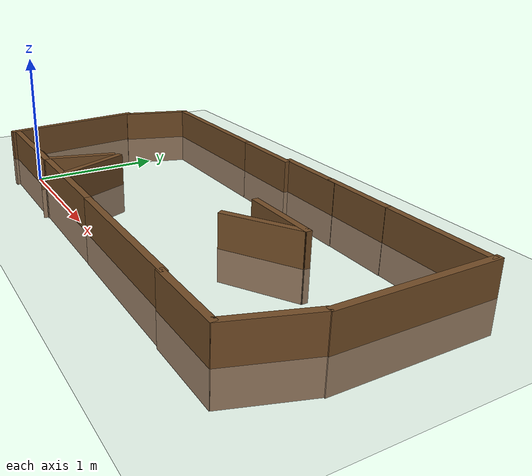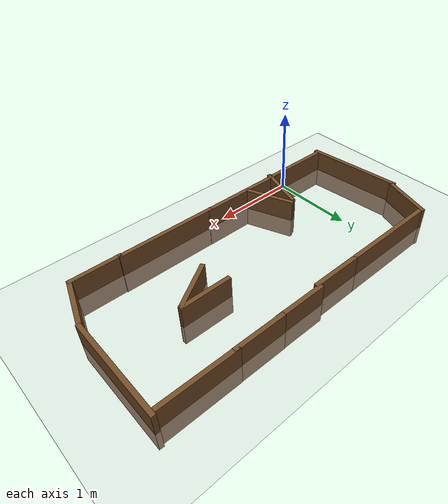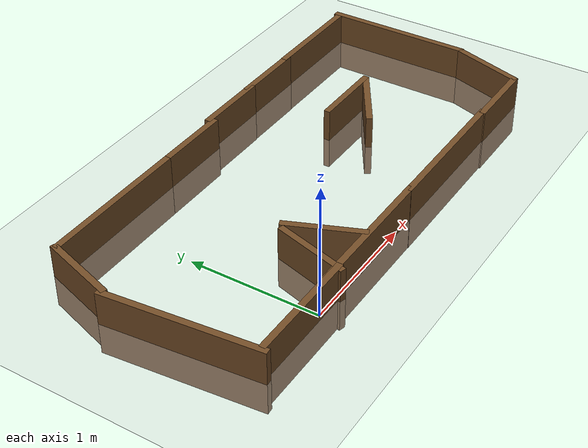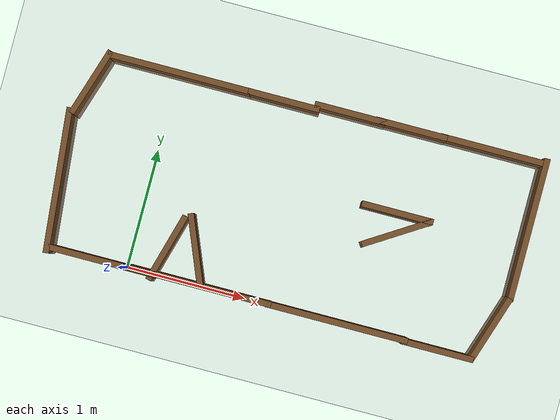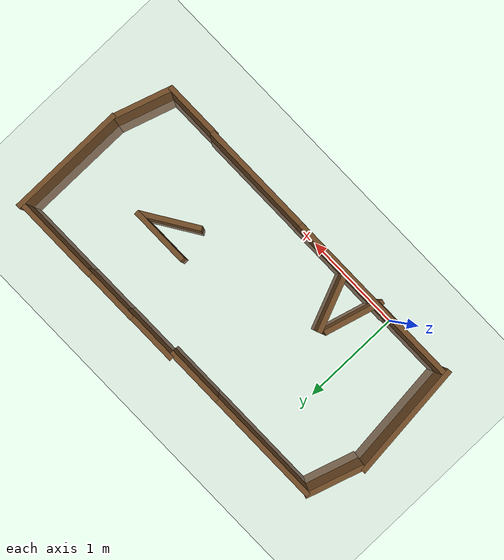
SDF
<sdf version="1.7">
 <world name="default">
  <light name="sun" type="directional">
   <pose>0 0 10 0 -0 0</pose>
   <diffuse>0.8 0.8 0.8 1</diffuse>
   <specular>0.2 0.2 0.2 1</specular>
   <attenuation>
    <range>1000</range>
    <constant>0.9</constant>
    <linear>0.01</linear>
    <quadratic>0.001</quadratic>
   </attenuation>
   <direction>-0.5 0.1 -0.9</direction>
   <spot><inner_angle>0</inner_angle><outer_angle>0</outer_angle><falloff>0</falloff></spot>
  </light>
  <model name="ground_plane">
   <static>1</static>
   <link name="link">
    <collision name="collision">
     <geometry><plane><normal>0 0 1</normal><size>100 100</size></plane></geometry>
     <surface>
      <contact><collide_bitmask>65535</collide_bitmask></contact>
      <friction><ode><mu>100</mu><mu2>50</mu2></ode></friction>
     </surface>
    </collision>
    <visual name="visual">
     <cast_shadows>0</cast_shadows>
     <geometry><plane><normal>0 0 1</normal><size>100 100</size></plane></geometry>
     <material>
      <script><uri>file://media/materials/scripts/gazebo.material</uri><name>Gazebo/Grey</name></script>
     </material>
    </visual>
   </link>
  </model>
  <gravity>0 0 -9.8</gravity>
  <magnetic_field>6e-06 2.3e-05 -4.2e-05</magnetic_field>
  <atmosphere type="adiabatic"/>
  <physics type="ode">
   <max_step_size>0.001</max_step_size>
   <real_time_factor>1</real_time_factor>
   <real_time_update_rate>1000</real_time_update_rate>
  </physics>
  <scene><ambient>0.4 0.4 0.4 1</ambient><background>0.7 0.7 0.7 1</background><shadows>1</shadows></scene>
  <audio><device>default</device></audio>
  <spherical_coordinates>
   <surface_model>EARTH_WGS84</surface_model>
   <latitude_deg>0</latitude_deg>
   <longitude_deg>0</longitude_deg>
   <elevation>0</elevation>
   <heading_deg>0</heading_deg>
  </spherical_coordinates>
  <model name="wall120cm">
   <pose>0.623052 0.009334 0 0 -0 0</pose>
   <static>1</static>
   <link name="link">
    <collision name="collision"><geometry><box><size>1.2 0.05 0.5</size></box></geometry></collision>
    <visual name="visual">
     <geometry><box><size>1.2 0.05 0.5</size></box></geometry>
     <material>
      <ambient>0.45 0.3 0.15 1</ambient>
      <diffuse>0.45 0.3 0.15 1</diffuse>
      <specular>0.05 0.05 0.05 1</specular>
     </material>
    </visual>
   </link>
  </model>
  <model name="wall120cm_0">
   <pose>1.77204 0.00724 0 0 -0 0</pose>
   <link name="Wall_0">
    <pose>1.77204 0.00724 0 0 -0 0</pose>
    <velocity>0 0 0 0 -0 0</velocity>
    <acceleration>0 0 0 0 -0 0</acceleration>
    <wrench>0 0 0 0 -0 0</wrench>
   </link>
   <static>1</static>
   <link name="link">
    <collision name="collision"><geometry><box><size>1.2 0.05 0.5</size></box></geometry></collision>
    <visual name="visual">
     <geometry><box><size>1.2 0.05 0.5</size></box></geometry>
     <material>
      <ambient>0.45 0.3 0.15 1</ambient>
      <diffuse>0.45 0.3 0.15 1</diffuse>
      <specular>0.05 0.05 0.05 1</specular>
     </material>
    </visual>
   </link>
  </model>
  <model name="wall60cm">
   <static>1</static>
   <pose>2.6251 -0.001949 0 0 -0 0</pose>
   <link name="Wall_0">
    <pose>2.6251 -0.001949 0 0 -0 0</pose>
    <velocity>0 0 0 0 -0 0</velocity>
    <acceleration>0 0 0 0 -0 0</acceleration>
    <wrench>0 0 0 0 -0 0</wrench>
   </link>
   <link name="link">
    <collision name="collision"><geometry><box><size>0.6 0.05 0.5</size></box></geometry></collision>
    <visual name="visual">
     <geometry><box><size>0.6 0.05 0.5</size></box></geometry>
     <material>
      <ambient>0.45 0.3 0.15 1</ambient>
      <diffuse>0.45 0.3 0.15 1</diffuse>
      <specular>0.05 0.05 0.05 1</specular>
     </material>
    </visual>
   </link>
  </model>
  <model name="wall120cm_1">
   <pose>3.09313 1.13285 0 0 0 -1.57444</pose>
   <link name="Wall_0">
    <pose>2.50314 0.662853 0 0 -0 0</pose>
    <velocity>0 0 0 0 -0 0</velocity>
    <acceleration>0 0 0 0 -0 0</acceleration>
    <wrench>0 0 0 0 -0 0</wrench>
   </link>
   <static>1</static>
   <link name="link">
    <collision name="collision"><geometry><box><size>1.2 0.05 0.5</size></box></geometry></collision>
    <visual name="visual">
     <geometry><box><size>1.2 0.05 0.5</size></box></geometry>
     <material>
      <ambient>0.45 0.3 0.15 1</ambient>
      <diffuse>0.45 0.3 0.15 1</diffuse>
      <specular>0.05 0.05 0.05 1</specular>
     </material>
    </visual>
   </link>
  </model>
  <model name="wall90cm">
   <static>1</static>
   <pose>2.65487 1.68755 0 0 -0 0</pose>
   <link name="Wall_0">
    <pose>2.50314 0.662853 0 0 -0 0</pose>
    <velocity>0 0 0 0 -0 0</velocity>
    <acceleration>0 0 0 0 -0 0</acceleration>
    <wrench>0 0 0 0 -0 0</wrench>
   </link>
   <link name="link">
    <collision name="collision"><geometry><box><size>0.9 0.05 0.5</size></box></geometry></collision>
    <visual name="visual">
     <geometry><box><size>0.9 0.05 0.5</size></box></geometry>
     <material>
      <ambient>0.45 0.3 0.15 1</ambient>
      <diffuse>0.45 0.3 0.15 1</diffuse>
      <specular>0.05 0.05 0.05 1</specular>
     </material>
    </visual>
   </link>
  </model>
  <model name="wall60cm_0">
   <static>1</static>
   <pose>1.96491 1.68449 0 0 -0 0</pose>
   <link name="Wall_0">
    <pose>2.50314 0.662853 0 0 -0 0</pose>
    <velocity>0 0 0 0 -0 0</velocity>
    <acceleration>0 0 0 0 -0 0</acceleration>
    <wrench>0 0 0 0 -0 0</wrench>
   </link>
   <link name="link">
    <collision name="collision"><geometry><box><size>0.6 0.05 0.5</size></box></geometry></collision>
    <visual name="visual">
     <geometry><box><size>0.6 0.05 0.5</size></box></geometry>
     <material>
      <ambient>0.45 0.3 0.15 1</ambient>
      <diffuse>0.45 0.3 0.15 1</diffuse>
      <specular>0.05 0.05 0.05 1</specular>
     </material>
    </visual>
   </link>
  </model>
  <model name="wall60cm_1">
   <static>1</static>
   <pose>1.44963 1.68097 0 0 -0 0</pose>
   <link name="Wall_0">
    <pose>2.50314 0.662853 0 0 -0 0</pose>
    <velocity>0 0 0 0 -0 0</velocity>
    <acceleration>0 0 0 0 -0 0</acceleration>
    <wrench>0 0 0 0 -0 0</wrench>
   </link>
   <link name="link">
    <collision name="collision"><geometry><box><size>0.6 0.05 0.5</size></box></geometry></collision>
    <visual name="visual">
     <geometry><box><size>0.6 0.05 0.5</size></box></geometry>
     <material>
      <ambient>0.45 0.3 0.15 1</ambient>
      <diffuse>0.45 0.3 0.15 1</diffuse>
      <specular>0.05 0.05 0.05 1</specular>
     </material>
    </visual>
   </link>
  </model>
  <model name="wall60cm_2">
   <static>1</static>
   <pose>0.899293 1.64437 0 0 -0 0</pose>
   <link name="Wall_0">
    <pose>0.869297 1.48437 0 0 -0 0</pose>
    <velocity>0 0 0 0 -0 0</velocity>
    <acceleration>0 0 0 0 -0 0</acceleration>
    <wrench>0 0 0 0 -0 0</wrench>
   </link>
   <link name="link">
    <collision name="collision"><geometry><box><size>0.6 0.05 0.5</size></box></geometry></collision>
    <visual name="visual">
     <geometry><box><size>0.6 0.05 0.5</size></box></geometry>
     <material>
      <ambient>0.45 0.3 0.15 1</ambient>
      <diffuse>0.45 0.3 0.15 1</diffuse>
      <specular>0.05 0.05 0.05 1</specular>
     </material>
    </visual>
   </link>
  </model>
  <model name="wall120cm_2">
   <pose>0.01699 1.64408 0 0 -0 0</pose>
   <link name="Wall_0">
    <pose>2.50314 0.662853 0 0 -0 0</pose>
    <velocity>0 0 0 0 -0 0</velocity>
    <acceleration>0 0 0 0 -0 0</acceleration>
    <wrench>0 0 0 0 -0 0</wrench>
   </link>
   <static>1</static>
   <link name="link">
    <collision name="collision"><geometry><box><size>1.2 0.05 0.5</size></box></geometry></collision>
    <visual name="visual">
     <geometry><box><size>1.2 0.05 0.5</size></box></geometry>
     <material>
      <ambient>0.45 0.3 0.15 1</ambient>
      <diffuse>0.45 0.3 0.15 1</diffuse>
      <specular>0.05 0.05 0.05 1</specular>
     </material>
    </visual>
   </link>
  </model>
  <model name="wall120cm_3">
   <pose>-0.712202 0.546858 0 0 0 -1.47406</pose>
   <link name="Wall_0">
    <pose>2.50314 0.662853 0 0 -0 0</pose>
    <velocity>0 0 0 0 -0 0</velocity>
    <acceleration>0 0 0 0 -0 0</acceleration>
    <wrench>0 0 0 0 -0 0</wrench>
   </link>
   <static>1</static>
   <link name="link">
    <collision name="collision"><geometry><box><size>1.2 0.05 0.5</size></box></geometry></collision>
    <visual name="visual">
     <geometry><box><size>1.2 0.05 0.5</size></box></geometry>
     <material>
      <ambient>0.45 0.3 0.15 1</ambient>
      <diffuse>0.45 0.3 0.15 1</diffuse>
      <specular>0.05 0.05 0.05 1</specular>
     </material>
    </visual>
   </link>
   <pose>-0.702203 0.926862 0 0 -0 0</pose>
  </model>
  <model name="wall90cm_0">
   <static>1</static>
   <pose>-0.19676 0.002258 0 0 -0 0</pose>
   <link name="Wall_0">
    <pose>2.50314 0.662853 0 0 -0 0</pose>
    <velocity>0 0 0 0 -0 0</velocity>
    <acceleration>0 0 0 0 -0 0</acceleration>
    <wrench>0 0 0 0 -0 0</wrench>
   </link>
   <link name="link">
    <collision name="collision"><geometry><box><size>0.9 0.05 0.5</size></box></geometry></collision>
    <visual name="visual">
     <geometry><box><size>0.9 0.05 0.5</size></box></geometry>
     <material>
      <ambient>0.45 0.3 0.15 1</ambient>
      <diffuse>0.45 0.3 0.15 1</diffuse>
      <specular>0.05 0.05 0.05 1</specular>
     </material>
    </visual>
   </link>
  </model>
  <model name="wall60cm_3">
   <static>1</static>
   <pose>0.286753 0.241071 0 0 -0 1.29806</pose>
   <link name="Wall_0">
    <pose>2.50314 0.662853 0 0 -0 0</pose>
    <velocity>0 0 0 0 -0 0</velocity>
    <acceleration>0 0 0 0 -0 0</acceleration>
    <wrench>0 0 0 0 -0 0</wrench>
   </link>
   <link name="link">
    <collision name="collision"><geometry><box><size>0.6 0.05 0.5</size></box></geometry></collision>
    <visual name="visual">
     <geometry><box><size>0.6 0.05 0.5</size></box></geometry>
     <material>
      <ambient>0.45 0.3 0.15 1</ambient>
      <diffuse>0.45 0.3 0.15 1</diffuse>
      <specular>0.05 0.05 0.05 1</specular>
     </material>
    </visual>
   </link>
  </model>
  <model name="wall60cm_4">
   <static>1</static>
   <pose>0.51552 0.283577 0 0 0 -1.18335</pose>
   <link name="Wall_0">
    <pose>2.50314 0.662853 0 0 -0 0</pose>
    <velocity>0 0 0 0 -0 0</velocity>
    <acceleration>0 0 0 0 -0 0</acceleration>
    <wrench>0 0 0 0 -0 0</wrench>
   </link>
   <link name="link">
    <collision name="collision"><geometry><box><size>0.6 0.05 0.5</size></box></geometry></collision>
    <visual name="visual">
     <geometry><box><size>0.6 0.05 0.5</size></box></geometry>
     <material>
      <ambient>0.45 0.3 0.15 1</ambient>
      <diffuse>0.45 0.3 0.15 1</diffuse>
      <specular>0.05 0.05 0.05 1</specular>
     </material>
    </visual>
   </link>
  </model>
  <model name="wall60cm_4_clone">
   <static>1</static>
   <pose>-0.657317 1.38862 0 0 0 -1.87775</pose>
   <link name="Wall_0">
    <pose>2.50314 0.662853 0 0 -0 0</pose>
    <velocity>0 0 0 0 -0 0</velocity>
    <acceleration>0 0 0 0 -0 0</acceleration>
    <wrench>0 0 0 0 -0 0</wrench>
   </link>
   <link name="link">
    <collision name="collision"><geometry><box><size>0.6 0.05 0.5</size></box></geometry></collision>
    <visual name="visual">
     <geometry><box><size>0.6 0.05 0.5</size></box></geometry>
     <material>
      <ambient>0.45 0.3 0.15 1</ambient>
      <diffuse>0.45 0.3 0.15 1</diffuse>
      <specular>0.05 0.05 0.05 1</specular>
     </material>
    </visual>
   </link>
  </model>
  <model name="wall60cm_5">
   <static>1</static>
   <pose>2.02754 0.99522 0 0 -0 0</pose>
   <link name="link">
    <collision name="collision"><geometry><box><size>0.6 0.05 0.5</size></box></geometry></collision>
    <visual name="visual">
     <geometry><box><size>0.6 0.05 0.5</size></box></geometry>
     <material>
      <ambient>0.45 0.3 0.15 1</ambient>
      <diffuse>0.45 0.3 0.15 1</diffuse>
      <specular>0.05 0.05 0.05 1</specular>
     </material>
    </visual>
   </link>
  </model>
  <model name="wall60cm_5_clone">
   <static>1</static>
   <pose>2.0624 0.83466 0 0 -0 0.56509</pose>
   <link name="link">
    <collision name="collision"><geometry><box><size>0.6 0.05 0.5</size></box></geometry></collision>
    <visual name="visual">
     <geometry><box><size>0.6 0.05 0.5</size></box></geometry>
     <material>
      <ambient>0.45 0.3 0.15 1</ambient>
      <diffuse>0.45 0.3 0.15 1</diffuse>
      <specular>0.05 0.05 0.05 1</specular>
     </material>
    </visual>
   </link>
  </model>
  <model name="wall60cm_clone_0">
   <static>1</static>
   <pose>2.99576 0.26996 0 0 0 -1.88703</pose>
   <link name="link">
    <collision name="collision"><geometry><box><size>0.6 0.05 0.5</size></box></geometry></collision>
    <visual name="visual">
     <geometry><box><size>0.6 0.05 0.5</size></box></geometry>
     <material>
      <ambient>0.45 0.3 0.15 1</ambient>
      <diffuse>0.45 0.3 0.15 1</diffuse>
      <specular>0.05 0.05 0.05 1</specular>
     </material>
    </visual>
   </link>
  </model>
  <light name="user_directional_light_0" type="directional">
   <pose>2.68186 0.784815 1 0 -0 0</pose>
   <diffuse>0.5 0.5 0.5 1</diffuse>
   <specular>0.1 0.1 0.1 1</specular>
   <direction>0.1 0.1 -0.9</direction>
   <attenuation>
    <range>20</range>
    <constant>0.5</constant>
    <linear>0.01</linear>
    <quadratic>0.001</quadratic>
   </attenuation>
   <spot><inner_angle>0</inner_angle><outer_angle>0</outer_angle><falloff>0</falloff></spot>
  </light>
 </world>
</sdf>
